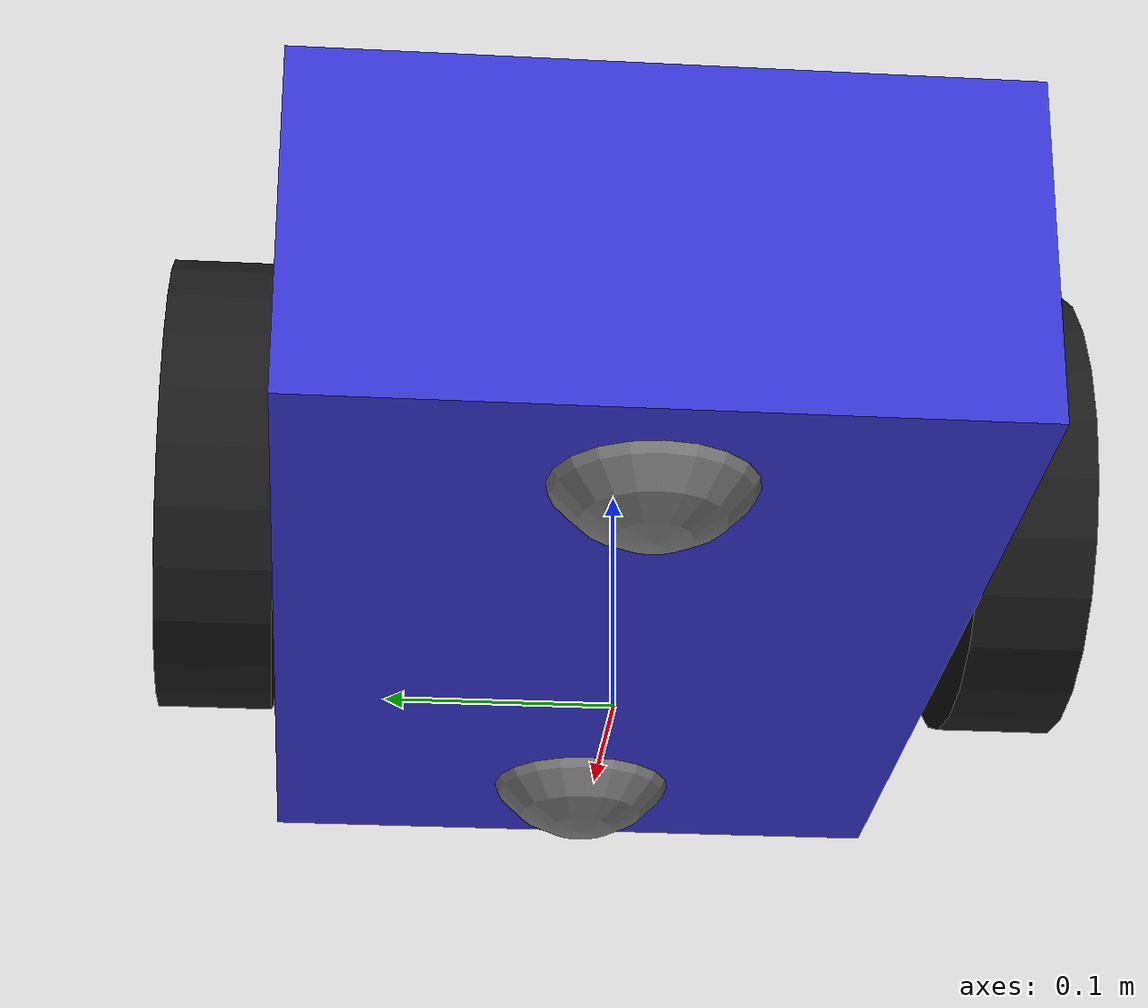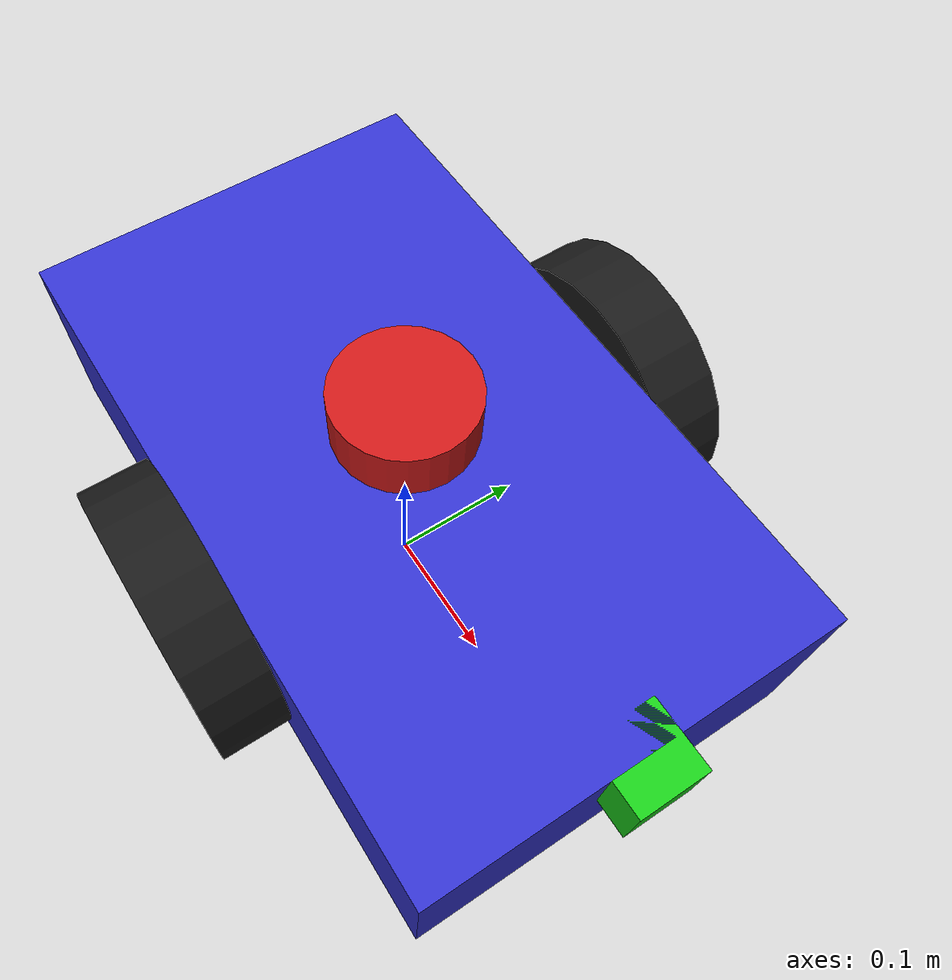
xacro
<?xml version="1.0"?>
<robot name="audition_robot" xmlns:xacro="http://www.ros.org/wiki/xacro">

  <xacro:property name="base_length"  value="0.5"/>
  <xacro:property name="base_width"   value="0.3"/>
  <xacro:property name="base_height"  value="0.15"/>
  <xacro:property name="wheel_radius" value="0.1"/>
  <xacro:property name="wheel_width"  value="0.05"/>
  <xacro:property name="wheel_sep"    value="0.35"/>

  <link name="base_footprint"/>

  <joint name="base_joint" type="fixed">
    <parent link="base_footprint"/>
    <child  link="base_link"/>
    <origin xyz="0 0 ${wheel_radius}" rpy="0 0 0"/>
  </joint>

  <link name="base_link">
    <visual>
      <geometry>
        <box size="${base_length} ${base_width} ${base_height}"/>
      </geometry>
      <material name="blue">
        <color rgba="0.2 0.2 0.8 1.0"/>
      </material>
    </visual>
    <collision>
      <geometry>
        <box size="${base_length} ${base_width} ${base_height}"/>
      </geometry>
    </collision>
    <inertial>
      <mass value="10.0"/>
      <inertia ixx="0.3" ixy="0" ixz="0"
               iyy="0.3" iyz="0"
               izz="0.3"/>
    </inertial>
  </link>

  <xacro:macro name="drive_wheel" params="name x y">
    <link name="${name}_wheel">
      <visual>
        <origin rpy="1.5708 0 0"/>
        <geometry>
          <cylinder radius="${wheel_radius}" length="${wheel_width}"/>
        </geometry>
        <material name="black">
          <color rgba="0.1 0.1 0.1 1.0"/>
        </material>
      </visual>
      <collision>
        <origin rpy="1.5708 0 0"/>
        <geometry>
          <cylinder radius="${wheel_radius}" length="${wheel_width}"/>
        </geometry>
      </collision>
      <inertial>
        <mass value="1.0"/>
        <inertia ixx="0.005" ixy="0" ixz="0"
                 iyy="0.005" iyz="0"
                 izz="0.009"/>
      </inertial>
    </link>
    <joint name="${name}_wheel_joint" type="continuous">
      <parent link="base_link"/>
      <child  link="${name}_wheel"/>
      <origin xyz="${x} ${y} 0" rpy="0 0 0"/>
      <axis xyz="0 1 0"/>
    </joint>
  </xacro:macro>

  <xacro:macro name="caster_wheel" params="name x y">
    <link name="${name}_caster">
      <visual>
        <geometry>
          <sphere radius="${wheel_radius * 0.5}"/>
        </geometry>
        <material name="grey">
          <color rgba="0.5 0.5 0.5 1.0"/>
        </material>
      </visual>
      <collision>
        <geometry>
          <sphere radius="${wheel_radius * 0.5}"/>
        </geometry>
      </collision>
      <inertial>
        <mass value="0.1"/>
        <inertia ixx="0.001" ixy="0" ixz="0"
                 iyy="0.001" iyz="0"
                 izz="0.001"/>
      </inertial>
    </link>
    <joint name="${name}_caster_joint" type="fixed">
      <parent link="base_link"/>
      <child  link="${name}_caster"/>
      <origin xyz="${x} ${y} ${-wheel_radius * 0.5}" rpy="0 0 0"/>
    </joint>
  </xacro:macro>

  <xacro:drive_wheel name="left"  x="0"  y=" ${wheel_sep / 2}"/>
  <xacro:drive_wheel name="right" x="0"  y="-${wheel_sep / 2}"/>

  <xacro:caster_wheel name="front" x=" 0.18" y="0"/>
  <xacro:caster_wheel name="rear"  x="-0.18" y="0"/>

  <link name="laser_link">
    <visual>
      <geometry>
        <cylinder radius="0.05" length="0.04"/>
      </geometry>
      <material name="red">
        <color rgba="0.8 0.1 0.1 1.0"/>
      </material>
    </visual>
  </link>

  <joint name="laser_joint" type="fixed">
    <parent link="base_link"/>
    <child  link="laser_link"/>
    <origin xyz="0.0 0 0.1" rpy="0 0 0"/>
  </joint>

  <!-- camera link -->
  <link name="camera_link">
    <visual>
      <geometry>
        <box size="0.05 0.05 0.05"/>
      </geometry>
      <material name="green">
        <color rgba="0.1 0.8 0.1 1.0"/>
      </material>
    </visual>
  </link>

  <joint name="camera_joint" type="fixed">
    <parent link="base_link"/>
    <child  link="camera_link"/>
    <origin xyz="0.25 0 0.05" rpy="0 0 0"/>
  </joint>

  <gazebo>
    <plugin name="differential_drive" filename="libgazebo_ros_diff_drive.so">
      <left_joint>left_wheel_joint</left_joint>
      <right_joint>right_wheel_joint</right_joint>
      <wheel_separation>${wheel_sep}</wheel_separation>
      <wheel_diameter>${wheel_radius * 2}</wheel_diameter>
      <max_wheel_torque>100</max_wheel_torque>
      <max_wheel_acceleration>5.0</max_wheel_acceleration>
      <command_topic>cmd_vel</command_topic>
      <odometry_topic>odom</odometry_topic>
      <odometry_frame>odom</odometry_frame>
      <robot_base_frame>base_footprint</robot_base_frame>
      <publish_odom>true</publish_odom>
      <publish_odom_tf>true</publish_odom_tf>
      <publish_wheel_tf>false</publish_wheel_tf>
      <update_rate>30</update_rate>
    </plugin>
  </gazebo>

  <gazebo reference="left_wheel">
    <mu1>2.0</mu1>
    <mu2>2.0</mu2>
    <kp>1000000.0</kp>
    <kd>1.0</kd>
  </gazebo>

  <gazebo reference="right_wheel">
    <mu1>2.0</mu1>
    <mu2>2.0</mu2>
    <kp>1000000.0</kp>
    <kd>1.0</kd>
  </gazebo>

  <gazebo reference="front_caster">
    <mu1>0.0</mu1>
    <mu2>0.0</mu2>
    <kp>1000000.0</kp>
    <kd>1.0</kd>
  </gazebo>

  <gazebo reference="rear_caster">
    <mu1>0.0</mu1>
    <mu2>0.0</mu2>
    <kp>1000000.0</kp>
    <kd>1.0</kd>
  </gazebo>

  <gazebo reference="laser_link">
    <sensor name="lidar" type="ray">
      <always_on>true</always_on>
      <visualize>true</visualize>
      <update_rate>10</update_rate>
      <ray>
        <scan>
          <horizontal>
            <samples>360</samples>
            <resolution>1</resolution>
            <min_angle>-3.14159</min_angle>
            <max_angle>3.14159</max_angle>
          </horizontal>
        </scan>
        <range>
          <min>0.1</min>
          <max>10.0</max>
          <resolution>0.01</resolution>
        </range>
      </ray>
      <plugin name="lidar_plugin" filename="libgazebo_ros_ray_sensor.so">
        <ros>
          <remapping>~/out:=scan</remapping>
        </ros>
        <output_type>sensor_msgs/LaserScan</output_type>
        <frame_name>laser_link</frame_name>
      </plugin>
    </sensor>
  </gazebo>

  <gazebo reference="camera_link">
    <sensor name="depth_camera" type="depth">
      <always_on>true</always_on>
      <update_rate>15</update_rate>
      <camera>
        <horizontal_fov>1.047</horizontal_fov>
        <image>
          <width>640</width>
          <height>480</height>
          <format>R8G8B8</format>
        </image>
        <clip>
          <near>0.1</near>
          <far>10.0</far>
        </clip>
      </camera>
      <plugin name="depth_camera_plugin" filename="libgazebo_ros_camera.so">
        <frame_name>camera_link</frame_name>
        <min_depth>0.1</min_depth>
        <max_depth>10.0</max_depth>
      </plugin>
    </sensor>
  </gazebo>

</robot>
